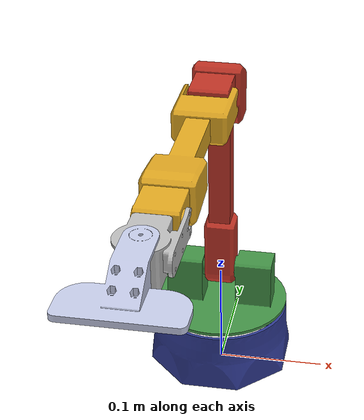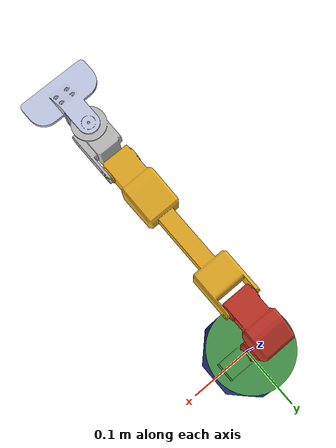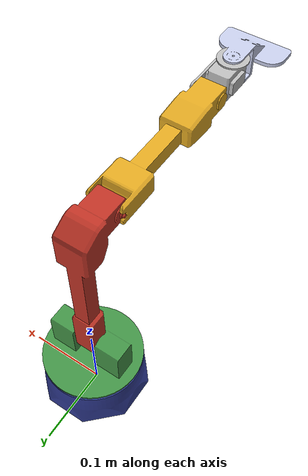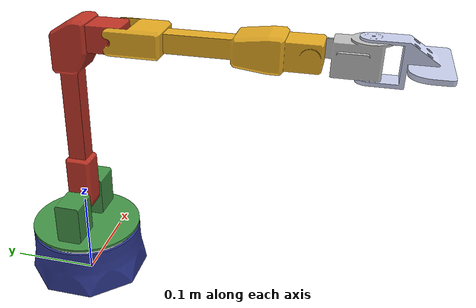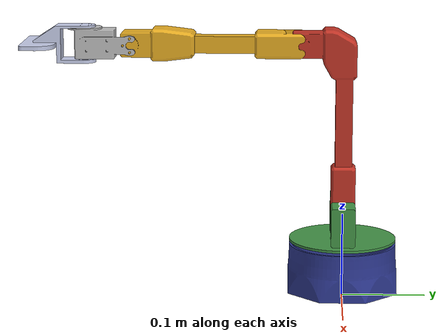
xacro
<?xml version="1.0" encoding="utf-8"?>

<robot xmlns:xacro="http://www.ros.org/wiki/xacro" name="rx201">

  <xacro:arg name="robot_name" default = "rx201"/>
  <xacro:arg name="base_link_frame" default="base_link"/>
  <xacro:arg name="show_ar_tag" default="false"/>
  <xacro:arg name="show_gripper_bar" default="true"/>
  <xacro:arg name="show_gripper_fingers" default="true"/>
  <xacro:arg name="use_world_frame" default="false"/>
  <xacro:arg name="external_urdf_loc" default=""/>
  <xacro:arg name="load_gazebo_configs" default="false"/>
  <xacro:property name="urdf_loc" value="$(arg external_urdf_loc)"/>
  <xacro:property name="pi_offset" value="0.00001"/>
  <xacro:if value="$(arg use_world_frame)">
    <link name="world"/>
    <joint name="fixed" type="fixed">
      <parent link="world"/>
      <child link="$(arg robot_name)/$(arg base_link_frame)"/>
    </joint>
  </xacro:if>
  <link name="$(arg robot_name)/$(arg base_link_frame)">
    <inertial>
      <origin xyz="5.78741335441198E-07 -0.0325292023706559 -7.58548593799006E-07" rpy="0 ${-pi/2} 0 " />
      <mass value="0.097038291965669" />
      <inertia ixx="0.00021620107836659" ixy="-2.89801867490186E-10" ixz="-1.7066046564796E-09" iyy="0.000383757318118765" iyz="1.29703370470684E-09" izz="0.000216200939904758" />
    </inertial>
    <visual>
      <origin xyz="0 0 0" rpy="${-pi/2} 0 0" />
      <geometry>
        <mesh filename="package://interbotix_xsarm_descriptions/meshes/rx201_meshes/rx201_1_base.stl" />
      </geometry>
      <material name="">
        <color rgba="0.188235294117647 0.231372549019608 0.588235294117647 1" />
      </material>
    </visual>
    <collision>
      <origin xyz="0 0 0" rpy="${-pi/2} 0 0" />
      <geometry>
        <mesh filename="package://interbotix_xsarm_descriptions/meshes/rx201_meshes/rx201_1_base.stl" />
      </geometry>
    </collision>
  </link>
  <link name="$(arg robot_name)/shoulder_link">
    <inertial>
      <origin xyz="0.000112176221657912 -4.64646352460254E-05 0.0194231369380871" rpy="0 0 0" />
      <mass value="0.149424500206782" />
      <inertia ixx="7.08157449431556E-05" ixy="5.47322634495802E-21" ixz="4.58288932494354E-20" iyy="7.33947781680689E-05" iyz="9.89084419421983E-21" izz="0.000112098899977407" />
    </inertial>
    <visual>
      <origin xyz="0 0 0" rpy="0 0 0" />
      <geometry>
        <mesh filename="package://interbotix_xsarm_descriptions/meshes/rx201_meshes/rx201_2_shoulder.stl" />
      </geometry>
      <material name="">
        <color rgba="0.266666666666667 0.588235294117647 0.282352941176471 1" />
      </material>
    </visual>
    <collision>
      <origin xyz="0 0 0" rpy="0 0 0" />
      <geometry>
        <mesh filename="package://interbotix_xsarm_descriptions/meshes/rx201_meshes/rx201_2_shoulder.stl" />
      </geometry>
    </collision>
  </link>
  <joint name="waist" type="revolute">
    <axis xyz="0 0 1"/>
    <limit effort="8" lower="${-pi + pi_offset}" upper="${pi - pi_offset}" velocity="${pi}"/>
    <origin rpy="0 0 0" xyz="0 0 0.06566"/>
    <parent link="$(arg robot_name)/$(arg base_link_frame)"/>
    <child link="$(arg robot_name)/shoulder_link"/>
    <dynamics friction="0.1"/>
  </joint>

  <link name="$(arg robot_name)/upper_arm_link">
    <inertial>
      <origin xyz="0.000140179174310019 -0.00978108281728311 0.135285663487031" rpy="0 0 0" />
      <mass value="0.208203031829544" />
      <inertia ixx="0.00117014135558755" ixy="-1.10981507046839E-07" ixz="1.76409907568088E-07" iyy="0.0011213331014271" iyz="0.000129084142737449" izz="8.86412369441377E-05" />
    </inertial>
    <visual>
      <origin xyz="0 0 0" rpy="0 0 0" />
      <geometry>
        <mesh filename="package://interbotix_xsarm_descriptions/meshes/rx201_meshes/rx201_3_upper_arm.stl" />
      </geometry>
      <material name="">
        <color rgba="0.768627450980392 0.207843137254902 0.152941176470588 1" />
      </material>
    </visual>
    <collision>
      <origin xyz="0 0 0" rpy="0 0 0" />
      <geometry>
        <mesh filename="package://interbotix_xsarm_descriptions/meshes/rx201_meshes/rx201_3_upper_arm.stl" />
      </geometry>
    </collision>
  </link>
  <joint name="shoulder" type="revolute">
    <axis xyz="1 0 0"/>
    <limit effort="18" lower="${radians(-108)}" upper="${radians(113)}" velocity="1"/>
    <origin rpy="0 0 0" xyz="0 0 0.03891"/>
    <parent link="$(arg robot_name)/shoulder_link"/>
    <child link="$(arg robot_name)/upper_arm_link"/>
    <dynamics friction="0.1"/>
  </joint>

  <link name="$(arg robot_name)/forearm_link">
    <inertial>
      <origin xyz="0.00015335898729739 -0.117838065124325 -0.000659998158308583" rpy="0 0 0" />
      <mass value="0.1854429342037" />
      <inertia ixx="0.000717462865516599" ixy="1.62510980366983E-11" ixz="2.19508599311596E-11" iyy="3.79233501536866E-05" iyz="-3.3693628003252E-11" izz="0.000728821951880921" />
    </inertial>
    <visual>
      <origin xyz="0 0 0" rpy="0 0 0" />
      <geometry>
        <mesh filename="package://interbotix_xsarm_descriptions/meshes/rx201_meshes/rx201_4_forearm.stl" />
      </geometry>
      <material name="">
        <color rgba="0.909803921568627 0.67843137254902 0.137254901960784 1" />
      </material>
    </visual>
    <collision>
      <origin xyz="0 0 0" rpy="0 0 0" />
      <geometry>
        <mesh filename="package://interbotix_xsarm_descriptions/meshes/rx201_meshes/rx201_4_forearm.stl" />
      </geometry>
    </collision>
  </link>
  <joint name="elbow" type="revolute">
    <axis xyz="1 0 0"/>
    <limit effort="13" lower="${radians(-108)}" upper="${radians(93)}" velocity="${pi}"/>
    <origin rpy="0 0 0" xyz="0 -0.049937733675976 0.200221004293106"/>
    <parent link="$(arg robot_name)/upper_arm_link"/>
    <child link="$(arg robot_name)/forearm_link"/>
    <dynamics friction="0.1"/>
  </joint>

  <link name="$(arg robot_name)/wrist_link">
    <inertial>
      <origin xyz="0.00144826555033376 -0.0414765304637691 0.000809836034455225" rpy="0 0 0" />
      <mass value="0.0558618443997172" />
      <inertia ixx="1.5513824378065E-05" ixy="-7.36792283927694E-20" ixz="1.76604941458683E-20" iyy="1.0000871940928E-05" iyz="5.34280856094087E-07" izz="1.48276300409588E-05" />
    </inertial>
    <visual>
      <origin xyz="0 0 0" rpy="0 0 0" />
      <geometry>
        <mesh filename="package://interbotix_xsarm_descriptions/meshes/rx201_meshes/rx201_5_wrist.stl" />
      </geometry>
      <material name="">
        <color rgba="0.752941176470588 0.752941176470588 0.752941176470588 1" />
      </material>
    </visual>
    <collision>
      <origin xyz="0 0 0" rpy="0 0 0" />
      <geometry>
        <mesh filename="package://interbotix_xsarm_descriptions/meshes/rx201_meshes/rx201_5_wrist.stl" />
      </geometry>
    </collision>
  </link>
  <joint name="wrist_angle" type="revolute">
    <axis xyz="1 0 0"/>
    <limit effort="5" lower="${radians(-100)}" upper="${radians(123)}" velocity="${pi}"/>
    <origin rpy="0 0 0" xyz="0 -0.200062272676885 -0.000660000000000605"/>
    <parent link="$(arg robot_name)/forearm_link"/>
    <child link="$(arg robot_name)/wrist_link"/>
    <dynamics friction="0.1"/>
  </joint>

  <link name="$(arg robot_name)/gripper_link">
    <inertial>
      <origin xyz="-1.0118316774721E-15 -0.0340706152664176 -0.000661958535275398" rpy="0 0 0" />
      <mass value="0.0412074186097806" />
      <inertia ixx="1.07195823625262E-05" ixy="-1.86918046457122E-21" ixz="1.3133039787675E-20" iyy="1.56950384148275E-05" iyz="8.05025078982935E-07" izz="1.86680792090178E-05" />
    </inertial>
    <visual>
      <origin xyz="0 0 0" rpy="0 0 0" />
      <geometry>
        <mesh filename="package://interbotix_xsarm_descriptions/meshes/rx201_meshes/rx201_6_gripper.stl" />
      </geometry>
      <material name="">
        <color rgba="0.792156862745098 0.819607843137255 0.933333333333333 1" />
      </material>
    </visual>
    <collision>
      <origin xyz="0 0 0" rpy="0 0 0" />
      <geometry>
        <mesh filename="package://interbotix_xsarm_descriptions/meshes/rx201_meshes/rx201_6_gripper.stl" />
      </geometry>
    </collision>
  </link>
  <joint name="wrist_rotate" type="revolute">
    <axis xyz="0 0 1"/>
    <limit effort="1" lower="${radians(-100)}" upper="${radians(100)}" velocity="${pi}"/>
    <origin rpy="3.1416 3.1416 3.1416" xyz="0.00015336 -0.0542 0"/>
    <parent link="$(arg robot_name)/wrist_link"/>
    <child link="$(arg robot_name)/gripper_link"/>
    <dynamics friction="0.1"/>
  </joint>

  <ros2_control name="XSHardwareInterface" type="system">
    <hardware>
      <plugin>interbotix_xs_ros_control/XSHardwareInterface</plugin>
    </hardware>

    <joint name="waist">
      <command_interface name="position">
        <param name="min">"${-pi + pi_offset}"</param>
        <param name="max">"${pi - pi_offset}"</param>
      </command_interface>
      <state_interface name="position"/>
    </joint>

    <joint name="shoulder">
      <command_interface name="position">
        <param name="min">"${radians(-108)}"</param>
        <param name="max">"${radians(113)}"</param>
      </command_interface>
      <state_interface name="position"/>
    </joint>

    <joint name="elbow">
      <command_interface name="position">
        <param name="min">"${radians(-108)}"</param>
        <param name="max">"${radians(93)}"</param>
      </command_interface>
      <state_interface name="position"/>
    </joint>

    <joint name="wrist_angle">
      <command_interface name="position">
        <param name="min">"${radians(-100)}"</param>
        <param name="max">"${radians(123)}"</param>
      </command_interface>
      <state_interface name="position"/>
    </joint>

    <joint name="wrist_rotate">
      <command_interface name="position">
        <param name="min">"${-pi + pi_offset}"</param>
        <param name="max">"${pi - pi_offset}"</param>
      </command_interface>
      <state_interface name="position"/>
    </joint>

  </ros2_control>
</robot>
